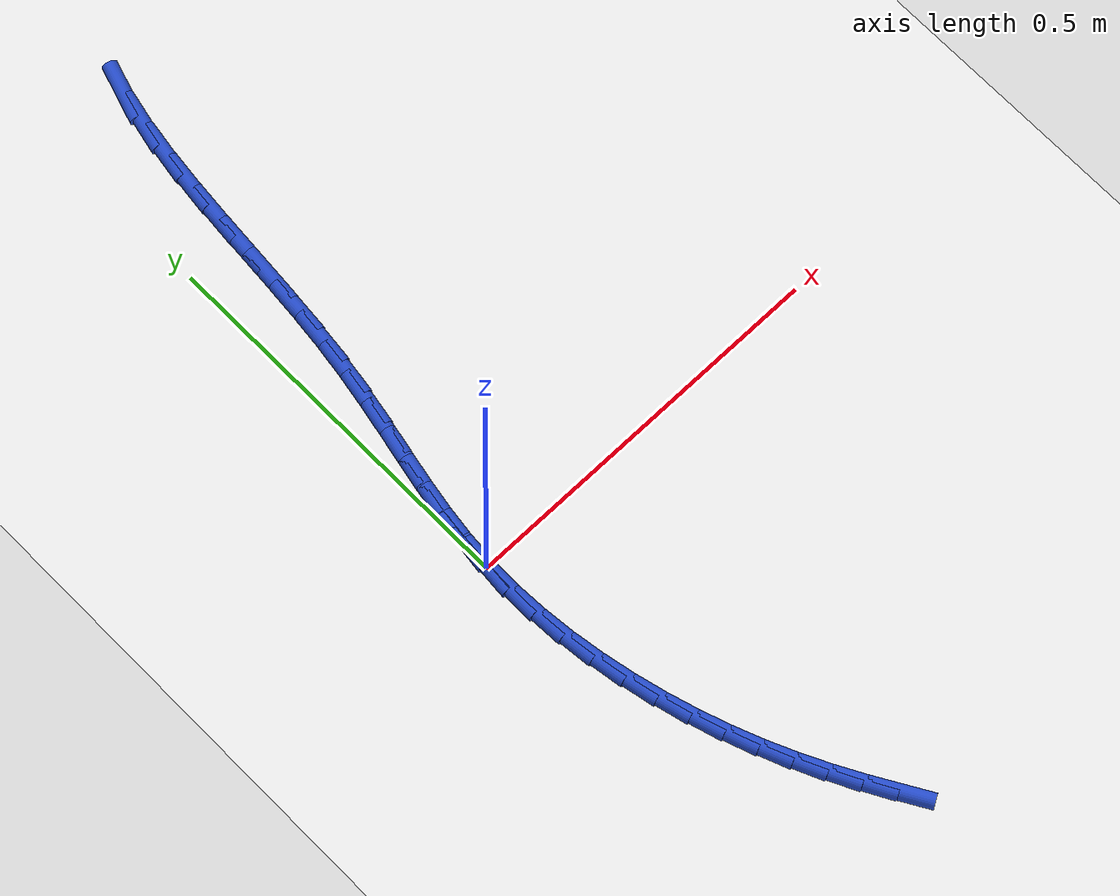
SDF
<sdf version="1.6">
 <world name="default">
  <model name="ground_plane">
   <static>1</static>
   <link name="link">
    <collision name="collision">
     <geometry><plane><normal>0 0 1</normal><size>100 100</size></plane></geometry>
     <surface><friction><ode><mu>100</mu><mu2>50</mu2></ode></friction></surface>
    </collision>
    <visual name="visual">
     <cast_shadows>0</cast_shadows>
     <geometry><plane><normal>0 0 1</normal><size>100 100</size></plane></geometry>
     <material>
      <script><uri>file://media/materials/scripts/gazebo.material</uri><name>Gazebo/WhiteGlow</name></script>
     </material>
    </visual>
   </link>
  </model>
  <model name="line">
   <link name="link_0">
    <pose>-1.734723475976807e-18 1.5959455978986625e-16 0.01 0 1.57 1.4917144993074014</pose>
    <collision name="collision">
     <geometry><cylinder><radius>0.01</radius><length>0.08</length></cylinder></geometry>
    </collision>
    <visual name="visual">
     <material>
      <script><name>Gazebo/Blue</name><uri>file://media/materials/scripts/gazebo.material</uri></script>
     </material>
     <geometry><cylinder><radius>0.01</radius><length>0.08</length></cylinder></geometry>
    </visual>
   </link>
   <link name="link_1">
    <pose>0.0032122889012655086 0.040535097974109334 0.01 0 1.57 1.436795211936674</pose>
    <collision name="collision">
     <geometry><cylinder><radius>0.01</radius><length>0.08</length></cylinder></geometry>
    </collision>
    <visual name="visual">
     <material>
      <script><name>Gazebo/Blue</name><uri>file://media/materials/scripts/gazebo.material</uri></script>
     </material>
     <geometry><cylinder><radius>0.01</radius><length>0.08</length></cylinder></geometry>
    </visual>
   </link>
   <link name="link_2">
    <pose>0.008602145523316692 0.08051653631881804 0.01 0 1.57 1.3968337575893583</pose>
    <collision name="collision">
     <geometry><cylinder><radius>0.01</radius><length>0.08</length></cylinder></geometry>
    </collision>
    <visual name="visual">
     <material>
      <script><name>Gazebo/Blue</name><uri>file://media/materials/scripts/gazebo.material</uri></script>
     </material>
     <geometry><cylinder><radius>0.01</radius><length>0.08</length></cylinder></geometry>
    </visual>
   </link>
   <link name="link_3">
    <pose>0.015613409360291696 0.12041243764119046 0.01 0 1.57 1.3729039591032515</pose>
    <collision name="collision">
     <geometry><cylinder><radius>0.01</radius><length>0.08</length></cylinder></geometry>
    </collision>
    <visual name="visual">
     <material>
      <script><name>Gazebo/Blue</name><uri>file://media/materials/scripts/gazebo.material</uri></script>
     </material>
     <geometry><cylinder><radius>0.01</radius><length>0.08</length></cylinder></geometry>
    </visual>
   </link>
   <link name="link_4">
    <pose>0.023689919906328627 0.16069092454829073 0.01 0 1.57 1.365004495759124</pose>
    <collision name="collision">
     <geometry><cylinder><radius>0.01</radius><length>0.08</length></cylinder></geometry>
    </collision>
    <visual name="visual">
     <material>
      <script><name>Gazebo/Blue</name><uri>file://media/materials/scripts/gazebo.material</uri></script>
     </material>
     <geometry><cylinder><radius>0.01</radius><length>0.08</length></cylinder></geometry>
    </visual>
   </link>
   <link name="link_5">
    <pose>0.032275516655565675 0.20182011964718308 0.01 0 1.57 1.372292932320048</pose>
    <collision name="collision">
     <geometry><cylinder><radius>0.01</radius><length>0.08</length></cylinder></geometry>
    </collision>
    <visual name="visual">
     <material>
      <script><name>Gazebo/Blue</name><uri>file://media/materials/scripts/gazebo.material</uri></script>
     </material>
     <geometry><cylinder><radius>0.01</radius><length>0.08</length></cylinder></geometry>
    </visual>
   </link>
   <link name="link_6">
    <pose>0.04081403910214094 0.24426814554493162 0.01 0 1.57 1.3932948616958882</pose>
    <collision name="collision">
     <geometry><cylinder><radius>0.01</radius><length>0.08</length></cylinder></geometry>
    </collision>
    <visual name="visual">
     <material>
      <script><name>Gazebo/Blue</name><uri>file://media/materials/scripts/gazebo.material</uri></script>
     </material>
     <geometry><cylinder><radius>0.01</radius><length>0.08</length></cylinder></geometry>
    </visual>
   </link>
   <link name="link_7">
    <pose>0.04874932674019256 0.2885031248486005 0.01 0 1.57 1.4260205735504552</pose>
    <collision name="collision">
     <geometry><cylinder><radius>0.01</radius><length>0.08</length></cylinder></geometry>
    </collision>
    <visual name="visual">
     <material>
      <script><name>Gazebo/Blue</name><uri>file://media/materials/scripts/gazebo.material</uri></script>
     </material>
     <geometry><cylinder><radius>0.01</radius><length>0.08</length></cylinder></geometry>
    </visual>
   </link>
   <link name="link_8">
    <pose>0.055527071072225063 0.33499104839182847 0.01 0 1.57 1.4609592371503337</pose>
    <collision name="collision">
     <geometry><cylinder><radius>0.01</radius><length>0.08</length></cylinder></geometry>
    </collision>
    <visual name="visual">
     <material>
      <script><name>Gazebo/Blue</name><uri>file://media/materials/scripts/gazebo.material</uri></script>
     </material>
     <geometry><cylinder><radius>0.01</radius><length>0.08</length></cylinder></geometry>
    </visual>
   </link>
   <link name="link_9">
    <pose>0.06091302109982317 0.38382950150664735 0.01 0 1.57 1.483079889269254</pose>
    <collision name="collision">
     <geometry><cylinder><radius>0.01</radius><length>0.08</length></cylinder></geometry>
    </collision>
    <visual name="visual">
     <material>
      <script><name>Gazebo/Blue</name><uri>file://media/materials/scripts/gazebo.material</uri></script>
     </material>
     <geometry><cylinder><radius>0.01</radius><length>0.08</length></cylinder></geometry>
    </visual>
   </link>
   <link name="link_10">
    <pose>0.06535429671786512 0.4343317704961793 0.01 0 1.57 1.4924993723851525</pose>
    <collision name="collision">
     <geometry><cylinder><radius>0.01</radius><length>0.08</length></cylinder></geometry>
    </collision>
    <visual name="visual">
     <material>
      <script><name>Gazebo/Blue</name><uri>file://media/materials/scripts/gazebo.material</uri></script>
     </material>
     <geometry><cylinder><radius>0.01</radius><length>0.08</length></cylinder></geometry>
    </visual>
   </link>
   <link name="link_11">
    <pose>0.06938534506794061 0.4857106227311014 0.01 0 1.57 1.4902363887045131</pose>
    <collision name="collision">
     <geometry><cylinder><radius>0.01</radius><length>0.08</length></cylinder></geometry>
    </collision>
    <visual name="visual">
     <material>
      <script><name>Gazebo/Blue</name><uri>file://media/materials/scripts/gazebo.material</uri></script>
     </material>
     <geometry><cylinder><radius>0.01</radius><length>0.08</length></cylinder></geometry>
    </visual>
   </link>
   <link name="link_12">
    <pose>0.07354061329163925 0.5371788255820903 0.01 0 1.57 1.4762610544672632</pose>
    <collision name="collision">
     <geometry><cylinder><radius>0.01</radius><length>0.08</length></cylinder></geometry>
    </collision>
    <visual name="visual">
     <material>
      <script><name>Gazebo/Blue</name><uri>file://media/materials/scripts/gazebo.material</uri></script>
     </material>
     <geometry><cylinder><radius>0.01</radius><length>0.08</length></cylinder></geometry>
    </visual>
   </link>
   <link name="link_13">
    <pose>0.07835454853055078 0.5879491464198231 0.01 0 1.57 1.4495111345499847</pose>
    <collision name="collision">
     <geometry><cylinder><radius>0.01</radius><length>0.08</length></cylinder></geometry>
    </collision>
    <visual name="visual">
     <material>
      <script><name>Gazebo/Blue</name><uri>file://media/materials/scripts/gazebo.material</uri></script>
     </material>
     <geometry><cylinder><radius>0.01</radius><length>0.08</length></cylinder></geometry>
    </visual>
   </link>
   <link name="link_14">
    <pose>0.08436159792626478 0.6372343526149764 0.01 0 1.57 1.4077358802722113</pose>
    <collision name="collision">
     <geometry><cylinder><radius>0.01</radius><length>0.08</length></cylinder></geometry>
    </collision>
    <visual name="visual">
     <material>
      <script><name>Gazebo/Blue</name><uri>file://media/materials/scripts/gazebo.material</uri></script>
     </material>
     <geometry><cylinder><radius>0.01</radius><length>0.08</length></cylinder></geometry>
    </visual>
   </link>
   <link name="link_15">
    <pose>0.09209620862037099 0.6842472115382272 0.01 0 1.57 1.347163154516065</pose>
    <collision name="collision">
     <geometry><cylinder><radius>0.01</radius><length>0.08</length></cylinder></geometry>
    </collision>
    <visual name="visual">
     <material>
      <script><name>Gazebo/Blue</name><uri>file://media/materials/scripts/gazebo.material</uri></script>
     </material>
     <geometry><cylinder><radius>0.01</radius><length>0.08</length></cylinder></geometry>
    </visual>
   </link>
   <link name="link_16">
    <pose>0.10209282775445905 0.7282004905602527 0.01 0 1.57 1.2620208555017312</pose>
    <collision name="collision">
     <geometry><cylinder><radius>0.01</radius><length>0.08</length></cylinder></geometry>
    </collision>
    <visual name="visual">
     <material>
      <script><name>Gazebo/Blue</name><uri>file://media/materials/scripts/gazebo.material</uri></script>
     </material>
     <geometry><cylinder><radius>0.01</radius><length>0.08</length></cylinder></geometry>
    </visual>
   </link>
   <link name="link_177">
    <pose>0.14818653065390097 -0.5180478721408566 0.01 0 1.57 -1.0402060007183338</pose>
    <collision name="collision">
     <geometry><cylinder><radius>0.01</radius><length>0.08</length></cylinder></geometry>
    </collision>
    <visual name="visual">
     <material>
      <script><name>Gazebo/Blue</name><uri>file://media/materials/scripts/gazebo.material</uri></script>
     </material>
     <geometry><cylinder><radius>0.01</radius><length>0.08</length></cylinder></geometry>
    </visual>
   </link>
   <link name="link_178">
    <pose>0.12684471379205395 -0.48167247886028086 0.01 0 1.57 -1.0736431821554175</pose>
    <collision name="collision">
     <geometry><cylinder><radius>0.01</radius><length>0.08</length></cylinder></geometry>
    </collision>
    <visual name="visual">
     <material>
      <script><name>Gazebo/Blue</name><uri>file://media/materials/scripts/gazebo.material</uri></script>
     </material>
     <geometry><cylinder><radius>0.01</radius><length>0.08</length></cylinder></geometry>
    </visual>
   </link>
   <link name="link_179">
    <pose>0.10714093836260852 -0.44535963431286824 0.01 0 1.57 -1.1111447732768274</pose>
    <collision name="collision">
     <geometry><cylinder><radius>0.01</radius><length>0.08</length></cylinder></geometry>
    </collision>
    <visual name="visual">
     <material>
      <script><name>Gazebo/Blue</name><uri>file://media/materials/scripts/gazebo.material</uri></script>
     </material>
     <geometry><cylinder><radius>0.01</radius><length>0.08</length></cylinder></geometry>
    </visual>
   </link>
   <link name="link_180">
    <pose>0.08901713332216245 -0.40874698621208116 0.01 0 1.57 -1.1517808786092683</pose>
    <collision name="collision">
     <geometry><cylinder><radius>0.01</radius><length>0.08</length></cylinder></geometry>
    </collision>
    <visual name="visual">
     <material>
      <script><name>Gazebo/Blue</name><uri>file://media/materials/scripts/gazebo.material</uri></script>
     </material>
     <geometry><cylinder><radius>0.01</radius><length>0.08</length></cylinder></geometry>
    </visual>
   </link>
   <link name="link_181">
    <pose>0.0724152276273147 -0.37147218227138434 0.01 0 1.57 -1.1943852780594464</pose>
    <collision name="collision">
     <geometry><cylinder><radius>0.01</radius><length>0.08</length></cylinder></geometry>
    </collision>
    <visual name="visual">
     <material>
      <script><name>Gazebo/Blue</name><uri>file://media/materials/scripts/gazebo.material</uri></script>
     </material>
     <geometry><cylinder><radius>0.01</radius><length>0.08</length></cylinder></geometry>
    </visual>
   </link>
   <link name="link_182">
    <pose>0.05727715023466384 -0.3331728702042417 0.01 0 1.57 -1.2376588713386443</pose>
    <collision name="collision">
     <geometry><cylinder><radius>0.01</radius><length>0.08</length></cylinder></geometry>
    </collision>
    <visual name="visual">
     <material>
      <script><name>Gazebo/Blue</name><uri>file://media/materials/scripts/gazebo.material</uri></script>
     </material>
     <geometry><cylinder><radius>0.01</radius><length>0.08</length></cylinder></geometry>
    </visual>
   </link>
   <link name="link_183">
    <pose>0.04356327138853543 -0.29354129982600907 0.01 0 1.57 -1.2808730162288562</pose>
    <collision name="collision">
     <geometry><cylinder><radius>0.01</radius><length>0.08</length></cylinder></geometry>
    </collision>
    <visual name="visual">
     <material>
      <script><name>Gazebo/Blue</name><uri>file://media/materials/scripts/gazebo.material</uri></script>
     </material>
     <geometry><cylinder><radius>0.01</radius><length>0.08</length></cylinder></geometry>
    </visual>
   </link>
   <link name="link_184">
    <pose>0.031377849491478566 -0.2526957538838348 0.01 0 1.57 -1.32469422311675</pose>
    <collision name="collision">
     <geometry><cylinder><radius>0.01</radius><length>0.08</length></cylinder></geometry>
    </collision>
    <visual name="visual">
     <material>
      <script><name>Gazebo/Blue</name><uri>file://media/materials/scripts/gazebo.material</uri></script>
     </material>
     <geometry><cylinder><radius>0.01</radius><length>0.08</length></cylinder></geometry>
    </visual>
   </link>
   <link name="link_185">
    <pose>0.020892730928625126 -0.21095463379153964 0.01 0 1.57 -1.370014041436019</pose>
    <collision name="collision">
     <geometry><cylinder><radius>0.01</radius><length>0.08</length></cylinder></geometry>
    </collision>
    <visual name="visual">
     <material>
      <script><name>Gazebo/Blue</name><uri>file://media/materials/scripts/gazebo.material</uri></script>
     </material>
     <geometry><cylinder><radius>0.01</radius><length>0.08</length></cylinder></geometry>
    </visual>
   </link>
   <link name="link_186">
    <pose>0.0122801531820493 -0.16863749894688868 0.01 0 1.57 -1.4177336281034285</pose>
    <collision name="collision">
     <geometry><cylinder><radius>0.01</radius><length>0.08</length></cylinder></geometry>
    </collision>
    <visual name="visual">
     <material>
      <script><name>Gazebo/Blue</name><uri>file://media/materials/scripts/gazebo.material</uri></script>
     </material>
     <geometry><cylinder><radius>0.01</radius><length>0.08</length></cylinder></geometry>
    </visual>
   </link>
   <link name="link_187">
    <pose>0.005712353733824721 -0.12606390874764445 0.01 0 1.57 -1.468805318689171</pose>
    <collision name="collision">
     <geometry><cylinder><radius>0.01</radius><length>0.08</length></cylinder></geometry>
    </collision>
    <visual name="visual">
     <material>
      <script><name>Gazebo/Blue</name><uri>file://media/materials/scripts/gazebo.material</uri></script>
     </material>
     <geometry><cylinder><radius>0.01</radius><length>0.08</length></cylinder></geometry>
    </visual>
   </link>
   <link name="link_188">
    <pose>0.0013615700660256358 -0.08355342259157211 0.01 0 1.57 -1.5242685308894277</pose>
    <collision name="collision">
     <geometry><cylinder><radius>0.01</radius><length>0.08</length></cylinder></geometry>
    </collision>
    <visual name="visual">
     <material>
      <script><name>Gazebo/Blue</name><uri>file://media/materials/scripts/gazebo.material</uri></script>
     </material>
     <geometry><cylinder><radius>0.01</radius><length>0.08</length></cylinder></geometry>
    </visual>
   </link>
   <link name="link_189">
    <pose>-0.0005999603392739476 -0.04142559987643582 0.01 0 1.57 1.5563144991669744</pose>
    <collision name="collision">
     <geometry><cylinder><radius>0.01</radius><length>0.08</length></cylinder></geometry>
    </collision>
    <visual name="visual">
     <material>
      <script><name>Gazebo/Blue</name><uri>file://media/materials/scripts/gazebo.material</uri></script>
     </material>
     <geometry><cylinder><radius>0.01</radius><length>0.08</length></cylinder></geometry>
    </visual>
   </link>
   <link name="link_190">
    <pose>-6.938893903907228e-18 6.938893903907228e-17 0.01 0 1.57 1.4884735536075993</pose>
    <collision name="collision">
     <geometry><cylinder><radius>0.01</radius><length>0.08</length></cylinder></geometry>
    </collision>
    <visual name="visual">
     <material>
      <script><name>Gazebo/Blue</name><uri>file://media/materials/scripts/gazebo.material</uri></script>
     </material>
     <geometry><cylinder><radius>0.01</radius><length>0.08</length></cylinder></geometry>
    </visual>
   </link>
   <link name="link_191">
    <pose>0.0033336885659214915 0.04040381763997128 0.01 0 1.57 1.488473553607599</pose>
    <collision name="collision">
     <geometry><cylinder><radius>0.01</radius><length>0.08</length></cylinder></geometry>
    </collision>
    <visual name="visual">
     <material>
      <script><name>Gazebo/Blue</name><uri>file://media/materials/scripts/gazebo.material</uri></script>
     </material>
     <geometry><cylinder><radius>0.01</radius><length>0.08</length></cylinder></geometry>
    </visual>
   </link>
  </model>
 </world>
</sdf>
